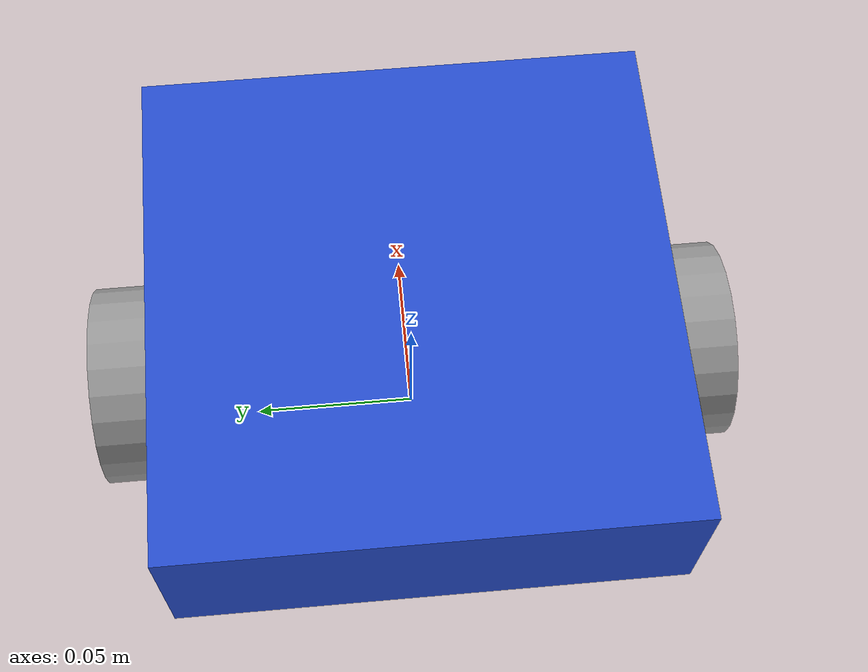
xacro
<?xml version="1.0"?>
<robot xmlns:xacro="http://www.ros.org/wiki/xacro">

    <xacro:property name="base_length" value="0.15" />
    <xacro:property name="base_width" value="0.15" />
    <xacro:property name="base_height" value="0.05" />
    <xacro:property name="wheel_radius" value="0.03" />
    <xacro:property name="wheel_length" value="0.02" />

    <link name="base_footprint" />

    <link name="base_link">
        <visual>
            <geometry>
                <box size="${base_length} ${base_width} ${base_height}" />
            </geometry>
            <origin xyz="0 0 ${base_height / 2.0}" rpy="0 0 0" />
            <material name="blue" />
        </visual>
        <collision>
            <geometry>
                <box size="${base_length} ${base_width} ${base_height}" />
            </geometry>
            <origin xyz="0 0 ${base_height / 2.0}" rpy="0 0 0" />
        </collision>
        <xacro:box_inertia m="5.0" x="${base_length}" y="${base_width}" z="${base_height}"
                           o_xyz="0 0 ${base_height / 2.0}" o_rpy="0 0 0" />
    </link>

    <xacro:macro name="wheel_link" params="prefix">
        <link name="${prefix}_wheel_link">
            <visual>
                <geometry>
                    <cylinder radius="${wheel_radius}" length="${wheel_length}" />
                </geometry>
                <origin xyz="0 0 0" rpy="${pi / 2.0} 0 0" />
                <material name="grey" />
            </visual>
            <collision>
                <geometry>
                    <sphere radius="${wheel_radius}" />
                </geometry>
                <origin xyz="0 0 0" rpy="0 0 0" />
            </collision>
            <xacro:cylinder_inertia m="1.0" r="${wheel_radius}" l="${wheel_length}"
                                    o_xyz="0 0 0" o_rpy="${pi / 2.0} 0 0" />
        </link>
    </xacro:macro>

    <xacro:wheel_link prefix="right" />
    <xacro:wheel_link prefix="left" />

    <link name="caster_front_wheel_link">
        <visual>
            <geometry>
                <sphere radius="${wheel_radius / 2.0}" />
            </geometry>
            <origin xyz="0 0 0" rpy="0 0 0" />
            <material name="grey" />
        </visual>
        <collision>
            <geometry>
                <sphere radius="${wheel_radius / 2.0}" />
            </geometry>
            <origin xyz="0 0 0" rpy="0 0 0" />
        </collision>
        <xacro:sphere_inertia m="0.5" r="${wheel_radius / 2.0}"
                              o_xyz="0 0 0" o_rpy="0 0 0" />
    </link>

    <link name="caster_rear_wheel_link">
        <visual>
            <geometry>
                <sphere radius="${wheel_radius / 2.0}" />
            </geometry>
            <origin xyz="0 0 0" rpy="0 0 0" />
            <material name="grey" />
        </visual>
        <collision>
            <geometry>
                <sphere radius="${wheel_radius / 2.0}" />
            </geometry>
            <origin xyz="0 0 0" rpy="0 0 0" />
        </collision>
        <xacro:sphere_inertia m="0.5" r="${wheel_radius / 2.0}"
                              o_xyz="0 0 0" o_rpy="0 0 0" />
    </link>

    <joint name="base_joint" type="fixed">
        <parent link="base_footprint" />
        <child link="base_link" />
        <origin xyz="0 0 ${wheel_radius}" rpy="0 0 0"/>
    </joint>

    <joint name="base_right_wheel_joint" type="continuous">
        <parent link="base_link" />
        <child link="right_wheel_link" />
        <origin xyz="${-base_length*0.0 / 4.0} ${-(base_width + wheel_length) / 2.0} 0" rpy="0 0 0" />
        <axis xyz="0 1 0" />
    </joint>

    <joint name="base_left_wheel_joint" type="continuous">
        <parent link="base_link" />
        <child link="left_wheel_link" />
        <origin xyz="${-base_length*0.0 / 4.0} ${(base_width + wheel_length) / 2.0} 0" rpy="0 0 0" />
        <axis xyz="0 1 0" />
    </joint>

    <joint name="base_caster_front_wheel_joint" type="fixed">
        <parent link="base_link" />
        <child link="caster_front_wheel_link" />
        <origin xyz="${base_length / 3.0} 0 ${-wheel_radius / 2.0}" rpy="0 0 0" />
    </joint>

    <joint name="base_caster_rear_wheel_joint" type="fixed">
        <parent link="base_link" />
        <child link="caster_rear_wheel_link" />
        <origin xyz="${-base_length / 3.0} 0 ${-wheel_radius / 2.0}" rpy="0 0 0" />
    </joint>

</robot>
